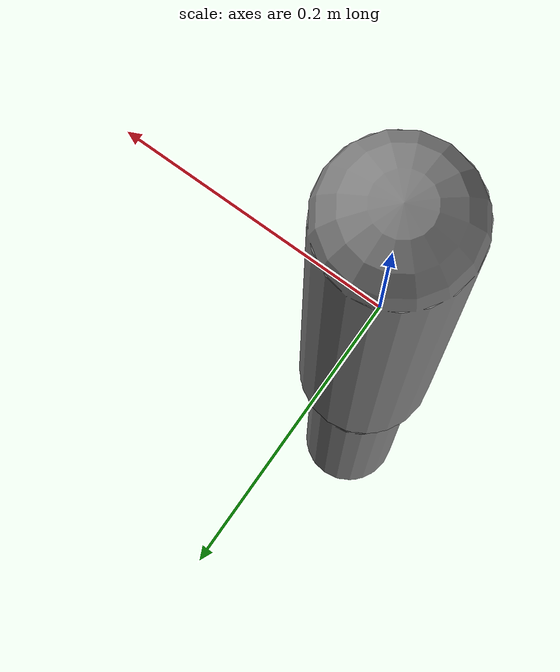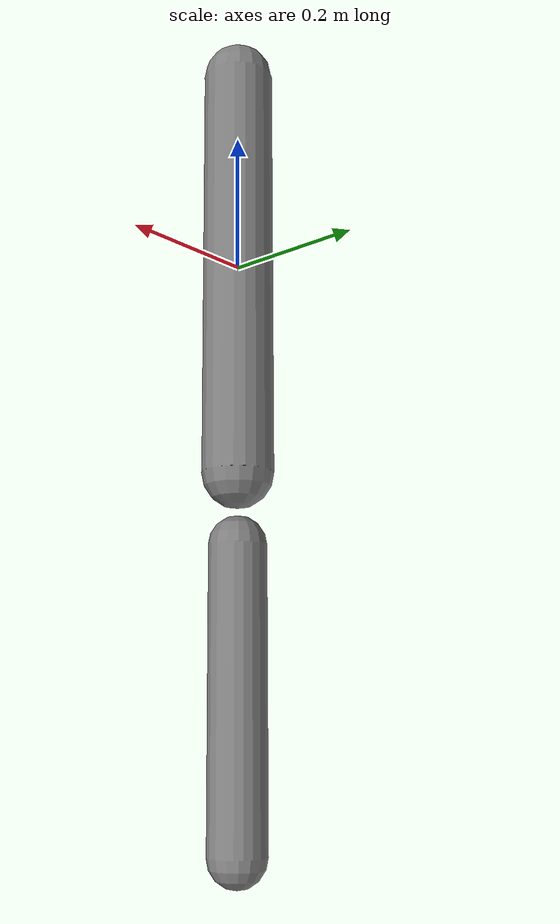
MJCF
<mujoco>
      <option gravity="0 0 -9.81"/>
      <worldbody>
        <body name="link1" pos="0 0 0">
          <joint name="j1" type="hinge" axis="0 1 0"/>
          <geom type="capsule" size="0.05 0.3" mass="1.0"/>
          <body name="link2" pos="0 0 -0.6">
            <joint name="j2" type="hinge" axis="0 1 0"/>
            <geom type="capsule" size="0.04 0.2" mass="0.5"/>
          </body>
        </body>
      </worldbody>
      <actuator>
        <motor name="m1" joint="j1" gear="1"/>
        <motor name="m2" joint="j2" gear="1"/>
      </actuator>
    </mujoco>
